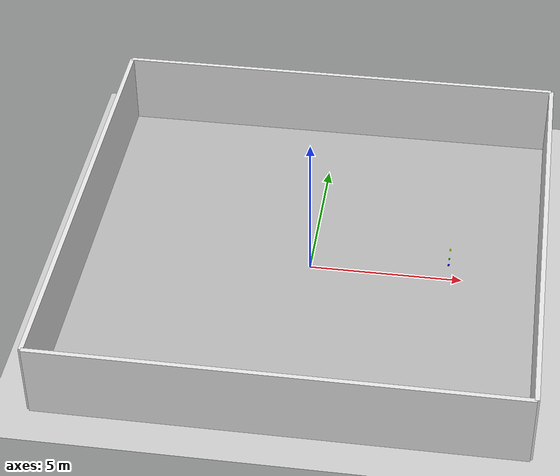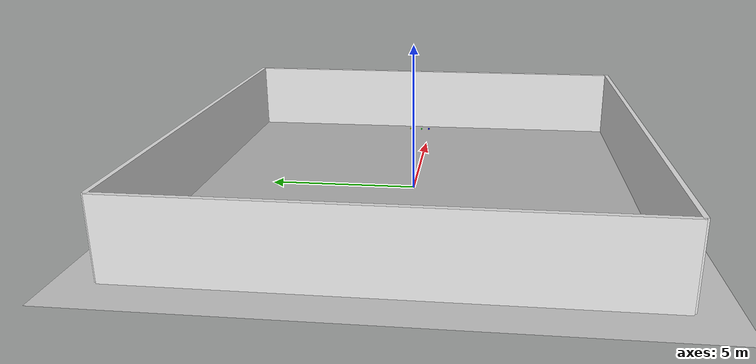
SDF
<sdf version="1.8">
 <world name="default">
  <physics name="2ms" type="ode">
   <max_step_size>0.002</max_step_size>
   <real_time_factor>1.0</real_time_factor>
   <real_time_update_rate>500</real_time_update_rate>
  </physics>
  <plugin filename="gz-sim-physics-system" name="gz::sim::systems::Physics"/>
  <plugin filename="gz-sim-user-commands-system" name="gz::sim::systems::UserCommands"/>
  <plugin filename="gz-sim-scene-broadcaster-system" name="gz::sim::systems::SceneBroadcaster"/>
  <plugin filename="gz-sim-sensors-system" name="gz::sim::systems::Sensors">
   <render_engine>ogre2</render_engine>
  </plugin>
  <plugin filename="gz-sim-contact-system" name="gz::sim::systems::Contact"/>
  <plugin filename="libgz_link_attacher.so" name="gz_link_attacher::LinkAttacher">
   <robot_model_name>xlerobot</robot_model_name>
   <gripper_link_name>Moving_Jaw</gripper_link_name>
   <attach_topic>/xlerobot/left_gripper_attach</attach_topic>
   <stow_topic>/xlerobot/left_gripper_stow</stow_topic>
   <stow_link_name>base_footprint</stow_link_name>
  </plugin>
  <plugin filename="libgz_link_attacher.so" name="gz_link_attacher::LinkAttacher">
   <robot_model_name>xlerobot</robot_model_name>
   <gripper_link_name>Moving_Jaw_2</gripper_link_name>
   <attach_topic>/xlerobot/right_gripper_attach</attach_topic>
   <stow_topic>/xlerobot/right_gripper_stow</stow_topic>
   <stow_link_name>base_footprint</stow_link_name>
  </plugin>
  <scene>
   <ambient>0.4 0.4 0.4 1</ambient>
   <background>0.7 0.7 0.7 1</background>
   <shadows>false</shadows>
   <grid>false</grid>
  </scene>
  <light type="directional" name="sun">
   <cast_shadows>false</cast_shadows>
   <pose>0 0 10 0 0 0</pose>
   <diffuse>0.8 0.8 0.8 1</diffuse>
   <specular>0.2 0.2 0.2 1</specular>
   <direction>-0.5 0.1 -0.9</direction>
  </light>
  <model name="ground_plane">
   <static>true</static>
   <link name="link">
    <collision name="collision">
     <geometry><plane><normal>0 0 1</normal><size>100 100</size></plane></geometry>
    </collision>
    <visual name="visual">
     <geometry><plane><normal>0 0 1</normal><size>100 100</size></plane></geometry>
     <material>
      <ambient>0.8 0.8 0.8 1</ambient>
      <diffuse>0.8 0.8 0.8 1</diffuse>
      <specular>0.8 0.8 0.8 1</specular>
     </material>
    </visual>
   </link>
  </model>
  <model name="ground_logo">
   <static>true</static>
   <pose>0 0 0 0 0 1.57</pose>
   <link name="link">
    <visual name="visual">
     <pose>0 0 0.001 0 0 0</pose>
     <geometry>
      <mesh><scale>1.33 1.25 1</scale><uri>model://warehouse_floor/meshes/floor.dae</uri></mesh>
     </geometry>
    </visual>
   </link>
  </model>
  <model name="wall_north">
   <static>true</static>
   <pose>0 7.5 1.25 0 0 0</pose>
   <link name="link">
    <collision name="collision"><geometry><box><size>15 0.15 2.5</size></box></geometry></collision>
    <visual name="visual">
     <geometry><box><size>15 0.15 2.5</size></box></geometry>
     <material>
      <ambient>0.9 0.9 0.9 1</ambient>
      <diffuse>0.9 0.9 0.9 1</diffuse>
      <specular>0.1 0.1 0.1 1</specular>
     </material>
    </visual>
   </link>
  </model>
  <model name="wall_south">
   <static>true</static>
   <pose>0 -7.5 1.25 0 0 0</pose>
   <link name="link">
    <collision name="collision"><geometry><box><size>15 0.15 2.5</size></box></geometry></collision>
    <visual name="visual">
     <geometry><box><size>15 0.15 2.5</size></box></geometry>
     <material>
      <ambient>0.9 0.9 0.9 1</ambient>
      <diffuse>0.9 0.9 0.9 1</diffuse>
      <specular>0.1 0.1 0.1 1</specular>
     </material>
    </visual>
   </link>
  </model>
  <model name="wall_east">
   <static>true</static>
   <pose>7.5 0 1.25 0 0 1.57</pose>
   <link name="link">
    <collision name="collision"><geometry><box><size>15 0.15 2.5</size></box></geometry></collision>
    <visual name="visual">
     <geometry><box><size>15 0.15 2.5</size></box></geometry>
     <material>
      <ambient>0.9 0.9 0.9 1</ambient>
      <diffuse>0.9 0.9 0.9 1</diffuse>
      <specular>0.1 0.1 0.1 1</specular>
     </material>
    </visual>
   </link>
  </model>
  <model name="wall_west">
   <static>true</static>
   <pose>-7.5 0 1.25 0 0 1.57</pose>
   <link name="link">
    <collision name="collision"><geometry><box><size>15 0.15 2.5</size></box></geometry></collision>
    <visual name="visual">
     <geometry><box><size>15 0.15 2.5</size></box></geometry>
     <material>
      <ambient>0.9 0.9 0.9 1</ambient>
      <diffuse>0.9 0.9 0.9 1</diffuse>
      <specular>0.1 0.1 0.1 1</specular>
     </material>
    </visual>
   </link>
  </model>
  <model name="blue_box">
   <pose>4.55 -0.15 0.765 0 0 0</pose>
   <link name="link">
    <inertial>
     <mass>0.05</mass>
     <inertia>
      <ixx>2.08e-05</ixx>
      <ixy>0</ixy>
      <ixz>0</ixz>
      <iyy>2.08e-05</iyy>
      <iyz>0</iyz>
      <izz>2.08e-05</izz>
     </inertia>
    </inertial>
    <collision name="collision"><geometry><box><size>0.05 0.05 0.05</size></box></geometry></collision>
    <visual name="visual">
     <geometry><box><size>0.05 0.05 0.05</size></box></geometry>
     <material><ambient>0 0 1 1</ambient><diffuse>0 0 1 1</diffuse><specular>0.5 0.5 0.5 1</specular></material>
    </visual>
   </link>
  </model>
  <model name="green_cylinder">
   <pose>4.55 0.15 0.765 0 0 0</pose>
   <link name="link">
    <inertial>
     <mass>0.05</mass>
     <inertia>
      <ixx>1.82e-05</ixx>
      <ixy>0</ixy>
      <ixz>0</ixz>
      <iyy>1.82e-05</iyy>
      <iyz>0</iyz>
      <izz>1.56e-05</izz>
     </inertia>
    </inertial>
    <collision name="collision">
     <geometry><cylinder><radius>0.025</radius><length>0.05</length></cylinder></geometry>
    </collision>
    <visual name="visual">
     <geometry><cylinder><radius>0.025</radius><length>0.05</length></cylinder></geometry>
     <material><ambient>0 1 0 1</ambient><diffuse>0 1 0 1</diffuse><specular>0.5 0.5 0.5 1</specular></material>
    </visual>
   </link>
  </model>
  <model name="yellow_box">
   <pose>4.55 0.6 0.765 0 0 0</pose>
   <link name="link">
    <inertial>
     <mass>0.05</mass>
     <inertia>
      <ixx>2.08e-05</ixx>
      <ixy>0</ixy>
      <ixz>0</ixz>
      <iyy>2.08e-05</iyy>
      <iyz>0</iyz>
      <izz>2.08e-05</izz>
     </inertia>
    </inertial>
    <collision name="collision"><geometry><box><size>0.05 0.05 0.05</size></box></geometry></collision>
    <visual name="visual">
     <geometry><box><size>0.05 0.05 0.05</size></box></geometry>
     <material><ambient>1 1 0 1</ambient><diffuse>1 1 0 1</diffuse><specular>0.5 0.5 0.5 1</specular></material>
    </visual>
   </link>
  </model>
 </world>
</sdf>
